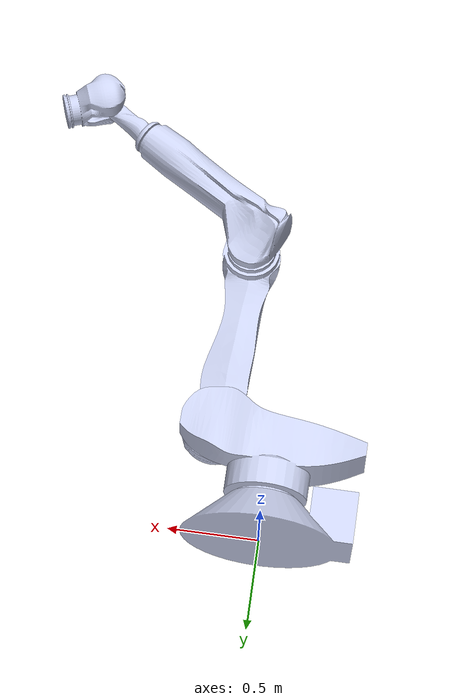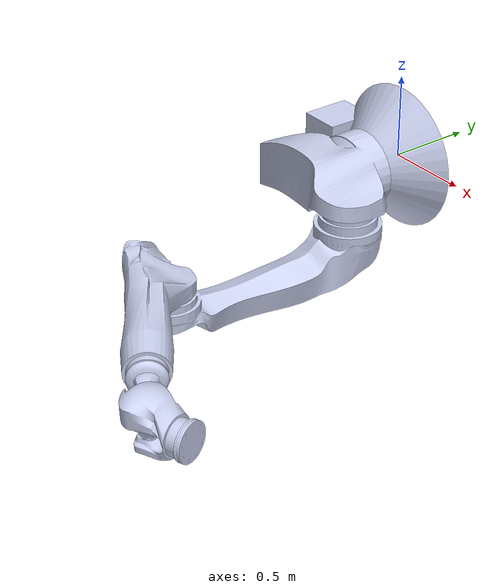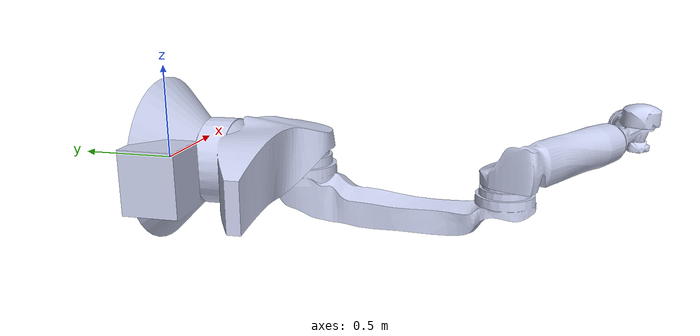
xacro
<?xml version="1.0" ?>
<!-- |    This document was autogenerated by xacro from /home/robat/goldilocks_sensibility_ws/src/moveit_quantec/urdf/moveit_quantec.urdf.xacro | -->
<!-- |    EDITING THIS FILE BY HAND IS NOT RECOMMENDED                                 | -->
<robot name="moveit_quantec" xmlns:xacro="http://ros.org/wiki/xacro">

    <xacro:property name="quantec_ns" value="quantec_" />

    <xacro:macro name="moveit_quantec" params="">
        <link name="${quantec_ns}base_link_quantec">
            <inertial>
                <origin rpy="0 0 0" xyz="-0.0810107614623872 1.69806255825153E-07 0.10599645436339" />
                <mass value="97.9298238151877" />
                <inertia ixx="3.12727259199142" ixy="2.14569120944394E-06" ixz="0.467210023955441" iyy="5.52628001885015" iyz="-1.97817775090254E-06" izz="7.58545932293491" />
            </inertial>
            <visual>
                <origin rpy="0 0 0" xyz="0 0 0" />
                <geometry>
                    <mesh filename="package://moveit_quantec/meshes/base_link.STL" />
                </geometry>
                <material name="">
                    <color rgba="0.792156862745098 0.819607843137255 0.933333333333333 1" />
                </material>
            </visual>
            <collision>
                <origin rpy="0 0 0" xyz="0 0 0" />
                <geometry>
                    <mesh filename="package://moveit_quantec/meshes/base_link.STL" />
                </geometry>
            </collision>
        </link>
        <link name="${quantec_ns}link_1">
            <inertial>
                <origin rpy="0 0 0" xyz="-0.0084665 0.019734 0.25939" />
                <mass value="94.945" />
                <inertia ixx="2.6472" ixy="-0.62895" ixz="-0.35979" iyy="6.3022" iyz="-0.17581" izz="5.5156" />
            </inertial>
            <visual>
                <origin rpy="0 0 0" xyz="0 0 0" />
                <geometry>
                    <mesh filename="package://moveit_quantec/meshes/link_1.STL" />
                </geometry>
                <material name="">
                    <color rgba="0.79216 0.81961 0.93333 1" />
                </material>
            </visual>
            <collision>
                <origin rpy="0 0 0" xyz="0 0 0" />
                <geometry>
                    <mesh filename="package://moveit_quantec/meshes/link_1.STL" />
                </geometry>
            </collision>
        </link>
        <joint name="${quantec_ns}joint_1" type="continuous">
            <origin rpy="1.5708 0.014047 0" xyz="0 -0.235 0" />
            <parent link="${quantec_ns}base_link_quantec" />
            <child link="${quantec_ns}link_1" />
            <axis xyz="0 0 1" />
        </joint>
        <link name="${quantec_ns}link_2">
            <inertial>
                <origin rpy="0 0 0" xyz="0.0015545 -0.23159 0.40897" />
                <mass value="82.176" />
                <inertia ixx="12.398" ixy="-9.2862E-05" ixz="0.082654" iyy="12.541" iyz="0.043185" izz="0.91874" />
            </inertial>
            <visual>
                <origin rpy="0 0 0" xyz="0 0 0" />
                <geometry>
                    <mesh filename="package://moveit_quantec/meshes/link_2.STL" />
                </geometry>
                <material name="">
                    <color rgba="0.79216 0.81961 0.93333 1" />
                </material>
            </visual>
            <collision>
                <origin rpy="0 0 0" xyz="0 0 0" />
                <geometry>
                    <mesh filename="package://moveit_quantec/meshes/link_2.STL" />
                </geometry>
            </collision>
        </link>
        <joint name="${quantec_ns}joint_2" type="continuous">
            <origin rpy="0 -0.0391 0" xyz="0.33 0 0.41772" />
            <parent link="${quantec_ns}link_1" />
            <child link="${quantec_ns}link_2" />
            <axis xyz="0 1 0" />
        </joint>
        <link name="${quantec_ns}link_3">
            <inertial>
                <origin rpy="0 0 0" xyz="0.35711 -0.015416 0.10193" />
                <mass value="47.124" />
                <inertia ixx="0.41866" ixy="-0.086691" ixz="-0.15996" iyy="3.9994" iyz="-0.042155" izz="3.9284" />
            </inertial>
            <visual>
                <origin rpy="0 0 0" xyz="0 0 0" />
                <geometry>
                    <mesh filename="package://moveit_quantec/meshes/link_3.STL" />
                </geometry>
                <material name="">
                    <color rgba="0.79216 0.81961 0.93333 1" />
                </material>
            </visual>
            <collision>
                <origin rpy="0 0 0" xyz="0 0 0" />
                <geometry>
                    <mesh filename="package://moveit_quantec/meshes/link_3.STL" />
                </geometry>
            </collision>
        </link>
        <joint name="${quantec_ns}joint_3" type="continuous">
            <origin rpy="0 -0.52738 0" xyz="0 0 1.15" />
            <parent link="${quantec_ns}link_2" />
            <child link="${quantec_ns}link_3" />
            <axis xyz="0 1 0" />
        </joint>
        <link name="${quantec_ns}link_4">
            <inertial>
                <origin rpy="0 0 0" xyz="0.27937 0.0063685 -0.00017456" />
                <mass value="4.6744" />
                <inertia ixx="0.011503" ixy="-0.0037737" ixz="7.4652E-05" iyy="0.085293" iyz="-0.00012925" izz="0.085285" />
            </inertial>
            <visual>
                <origin rpy="0 0 0" xyz="0 0 0" />
                <geometry>
                    <mesh filename="package://moveit_quantec/meshes/link_4.STL" />
                </geometry>
                <material name="">
                    <color rgba="0.79216 0.81961 0.93333 1" />
                </material>
            </visual>
            <collision>
                <origin rpy="0 0 0" xyz="0 0 0" />
                <geometry>
                    <mesh filename="package://moveit_quantec/meshes/link_4.STL" />
                </geometry>
            </collision>
        </link>
        <joint name="${quantec_ns}joint_4" type="continuous">
            <origin rpy="0.037095 0 0" xyz="0.78147 -0.0086752 0.115" />
            <parent link="${quantec_ns}link_3" />
            <child link="${quantec_ns}link_4" />
            <axis xyz="1 0 0" />
        </joint>
        <link name="${quantec_ns}link_5">
            <inertial>
                <origin rpy="0 0 0" xyz="0.046286 0.05529 7.0521E-05" />
                <mass value="8.3467" />
                <inertia ixx="0.035209" ixy="0.0040294" ixz="-2.9627E-05" iyy="0.059372" iyz="-0.00013764" izz="0.046632" />
            </inertial>
            <visual>
                <origin rpy="0 0 0" xyz="0 0 0" />
                <geometry>
                    <mesh filename="package://moveit_quantec/meshes/link_5.STL" />
                </geometry>
                <material name="">
                    <color rgba="0.79216 0.81961 0.93333 1" />
                </material>
            </visual>
            <collision>
                <origin rpy="0 0 0" xyz="0 0 0" />
                <geometry>
                    <mesh filename="package://moveit_quantec/meshes/link_5.STL" />
                </geometry>
            </collision>
        </link>
        <joint name="${quantec_ns}joint_5" type="continuous">
            <origin rpy="0 0.9269 0" xyz="0.44853 0 0" />
            <parent link="${quantec_ns}link_4" />
            <child link="${quantec_ns}link_5" />
            <axis xyz="0 1 0" />
        </joint>
        <link name="${quantec_ns}link_6">
            <inertial>
                <origin rpy="0 0 0" xyz="0.021186 9.6657E-07 -3.3846E-07" />
                <mass value="0.97276" />
                <inertia ixx="0.0044336" ixy="-1.5389E-09" ixz="6.5721E-10" iyy="0.0023152" iyz="-1.9424E-09" izz="0.0023149" />
            </inertial>
            <visual>
                <origin rpy="0 0 0" xyz="0 0 0" />
                <geometry>
                    <mesh filename="package://moveit_quantec/meshes/link_6.STL" />
                </geometry>
                <material name="">
                    <color rgba="0.79216 0.81961 0.93333 1" />
                </material>
            </visual>
            <collision>
                <origin rpy="0 0 0" xyz="0 0 0" />
                <geometry>
                    <mesh filename="package://moveit_quantec/meshes/link_6.STL" />
                </geometry>
            </collision>
        </link>
        <joint name="${quantec_ns}joint_6" type="continuous">
            <origin rpy="-2.218 0 0" xyz="0.20228 1.3733E-05 0" />
            <parent link="${quantec_ns}link_5" />
            <child link="${quantec_ns}link_6" />
            <axis xyz="1 0 0" />
        </joint>
        <transmission name="${quantec_ns}trans_joint_1">
            <type>transmission_interface/SimpleTransmission</type>
            <joint name="${quantec_ns}joint_1">
                <hardwareInterface>hardware_interface/EffortJointInterface</hardwareInterface>
            </joint>
            <actuator name="${quantec_ns}joint_1_motor">
                <hardwareInterface>hardware_interface/EffortJointInterface</hardwareInterface>
                <mechanicalReduction>1</mechanicalReduction>
            </actuator>
        </transmission>
        <transmission name="${quantec_ns}trans_joint_2">
            <type>transmission_interface/SimpleTransmission</type>
            <joint name="${quantec_ns}joint_2">
                <hardwareInterface>hardware_interface/EffortJointInterface</hardwareInterface>
            </joint>
            <actuator name="${quantec_ns}joint_2_motor">
                <hardwareInterface>hardware_interface/EffortJointInterface</hardwareInterface>
                <mechanicalReduction>1</mechanicalReduction>
            </actuator>
        </transmission>
        <transmission name="${quantec_ns}trans_joint_3">
            <type>transmission_interface/SimpleTransmission</type>
            <joint name="${quantec_ns}joint_3">
                <hardwareInterface>hardware_interface/EffortJointInterface</hardwareInterface>
            </joint>
            <actuator name="${quantec_ns}joint_3_motor">
                <hardwareInterface>hardware_interface/EffortJointInterface</hardwareInterface>
                <mechanicalReduction>1</mechanicalReduction>
            </actuator>
        </transmission>
        <transmission name="${quantec_ns}trans_joint_4">
            <type>transmission_interface/SimpleTransmission</type>
            <joint name="joint_4">
                <hardwareInterface>hardware_interface/EffortJointInterface</hardwareInterface>
            </joint>
            <actuator name="${quantec_ns}joint_4_motor">
                <hardwareInterface>hardware_interface/EffortJointInterface</hardwareInterface>
                <mechanicalReduction>1</mechanicalReduction>
            </actuator>
        </transmission>
        <transmission name="${quantec_ns}trans_joint_5">
            <type>transmission_interface/SimpleTransmission</type>
            <joint name="${quantec_ns}joint_5">
                <hardwareInterface>hardware_interface/EffortJointInterface</hardwareInterface>
            </joint>
            <actuator name="${quantec_ns}joint_5_motor">
                <hardwareInterface>hardware_interface/EffortJointInterface</hardwareInterface>
                <mechanicalReduction>1</mechanicalReduction>
            </actuator>
        </transmission>
        <transmission name="${quantec_ns}trans_joint_6">
            <type>transmission_interface/SimpleTransmission</type>
            <joint name="${quantec_ns}joint_6">
                <hardwareInterface>hardware_interface/EffortJointInterface</hardwareInterface>
            </joint>
            <actuator name="${quantec_ns}joint_6_motor">
                <hardwareInterface>hardware_interface/EffortJointInterface</hardwareInterface>
                <mechanicalReduction>1</mechanicalReduction>
            </actuator>
        </transmission>
        <gazebo>
            <plugin name="gazebo_ros_control" filename="libgazebo_ros_control.so">
                <robotNamespace>/quantec_ns</robotNamespace>
            </plugin>
        </gazebo>

    </xacro:macro>

    <!-- call -->
    <xacro:moveit_quantec/>

</robot>
